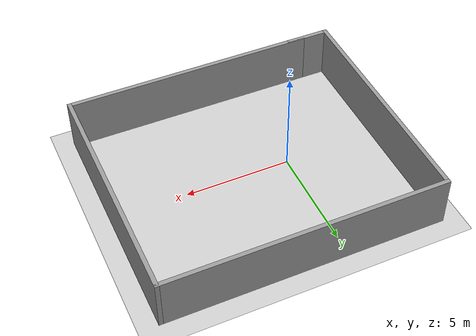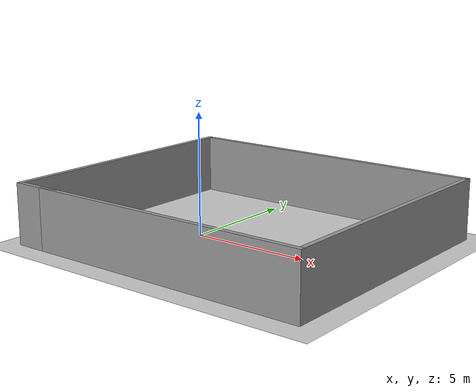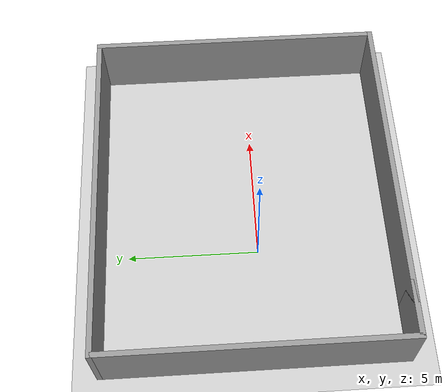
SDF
<?xml version="1.0" ?>
<sdf version="1.3">
  <world name="default">
    <!-- A global light source -->
    <include>
      <uri>model://sun</uri>
    </include>

    <!-- A ground plane -->
    <include>
      <uri>model://ground_plane</uri>
    </include>

    <!-- Add simple Room -->
<model name='simpleRoom'>
    <link name='Wall_24'>
      <collision name='Wall_24_Collision'>
        <geometry>
          <box>
            <size>12.0374 0.2 2.5</size>
          </box>
        </geometry>
        <pose>0 0 1.25 0 -0 0</pose>
      </collision>
      <visual name='Wall_24_Visual'>
        <pose>0 0 1.25 0 -0 0</pose>
        <geometry>
          <box>
            <size>12.0374 0.2 2.5</size>
          </box>
        </geometry>
        <material>
          <script>
            <uri>file://media/materials/scripts/gazebo.material</uri>
            <name>Gazebo/Grey</name>
          </script>
        </material>
      </visual>
      <velocity_decay>
        <linear>0</linear>
        <angular>0</angular>
      </velocity_decay>
      <pose>2.6397 -5.21081 0 0 -0 0</pose>
    </link>
    <link name='Wall_25'>
      <collision name='Wall_25_Collision'>
        <geometry>
          <box>
            <size>11.3917 0.2 2.5</size>
          </box>
        </geometry>
        <pose>0 0 1.25 0 -0 0</pose>
      </collision>
      <visual name='Wall_25_Visual'>
        <pose>0 0 1.25 0 -0 0</pose>
        <geometry>
          <box>
            <size>11.3917 0.2 2.5</size>
          </box>
        </geometry>
        <material>
          <script>
            <uri>file://media/materials/scripts/gazebo.material</uri>
            <name>Gazebo/Grey</name>
          </script>
        </material>
      </visual>
      <velocity_decay>
        <linear>0</linear>
        <angular>0</angular>
      </velocity_decay>
      <pose>8.5584 0.385047 0 0 -0 1.5708</pose>
    </link>
    <link name='Wall_26'>
      <collision name='Wall_26_Collision'>
        <geometry>
          <box>
            <size>13.3287 0.2 2.5</size>
          </box>
        </geometry>
        <pose>0 0 1.25 0 -0 0</pose>
      </collision>
      <visual name='Wall_26_Visual'>
        <pose>0 0 1.25 0 -0 0</pose>
        <geometry>
          <box>
            <size>13.3287 0.2 2.5</size>
          </box>
        </geometry>
        <material>
          <script>
            <uri>file://media/materials/scripts/gazebo.material</uri>
            <name>Gazebo/Grey</name>
          </script>
        </material>
      </visual>
      <velocity_decay>
        <linear>0</linear>
        <angular>0</angular>
      </velocity_decay>
      <pose>1.99402 5.9809 0 0 -0 3.14159</pose>
    </link>
    <link name='Wall_27'>
      <collision name='Wall_27_Collision'>
        <geometry>
          <box>
            <size>11.3917 0.2 2.5</size>
          </box>
        </geometry>
        <pose>0 0 1.25 0 -0 0</pose>
      </collision>
      <visual name='Wall_27_Visual'>
        <pose>0 0 1.25 0 -0 0</pose>
        <geometry>
          <box>
            <size>11.3917 0.2 2.5</size>
          </box>
        </geometry>
        <material>
          <script>
            <uri>file://media/materials/scripts/gazebo.material</uri>
            <name>Gazebo/Grey</name>
          </script>
        </material>
      </visual>
      <velocity_decay>
        <linear>0</linear>
        <angular>0</angular>
      </velocity_decay>
      <pose>-4.57035 0.385047 0 0 0 -1.5708</pose>
    </link>
    <link name='Wall_28'>
      <collision name='Wall_28_Collision'>
        <geometry>
          <box>
            <size>2.13703 0.2 2.5</size>
          </box>
        </geometry>
        <pose>0 0 1.25 0 -0 0</pose>
      </collision>
      <visual name='Wall_28_Visual'>
        <pose>0 0 1.25 0 -0 0</pose>
        <geometry>
          <box>
            <size>2.13703 0.2 2.5</size>
          </box>
        </geometry>
        <material>
          <script>
            <uri>file://media/materials/scripts/gazebo.material</uri>
            <name>Gazebo/Grey</name>
          </script>
        </material>
      </visual>
      <velocity_decay>
        <linear>0</linear>
        <angular>0</angular>
      </velocity_decay>
      <pose>-3.60183 -5.21081 0 0 -0 0</pose>
    </link>
    <static>1</static>
  </model>
  </world>
</sdf>
